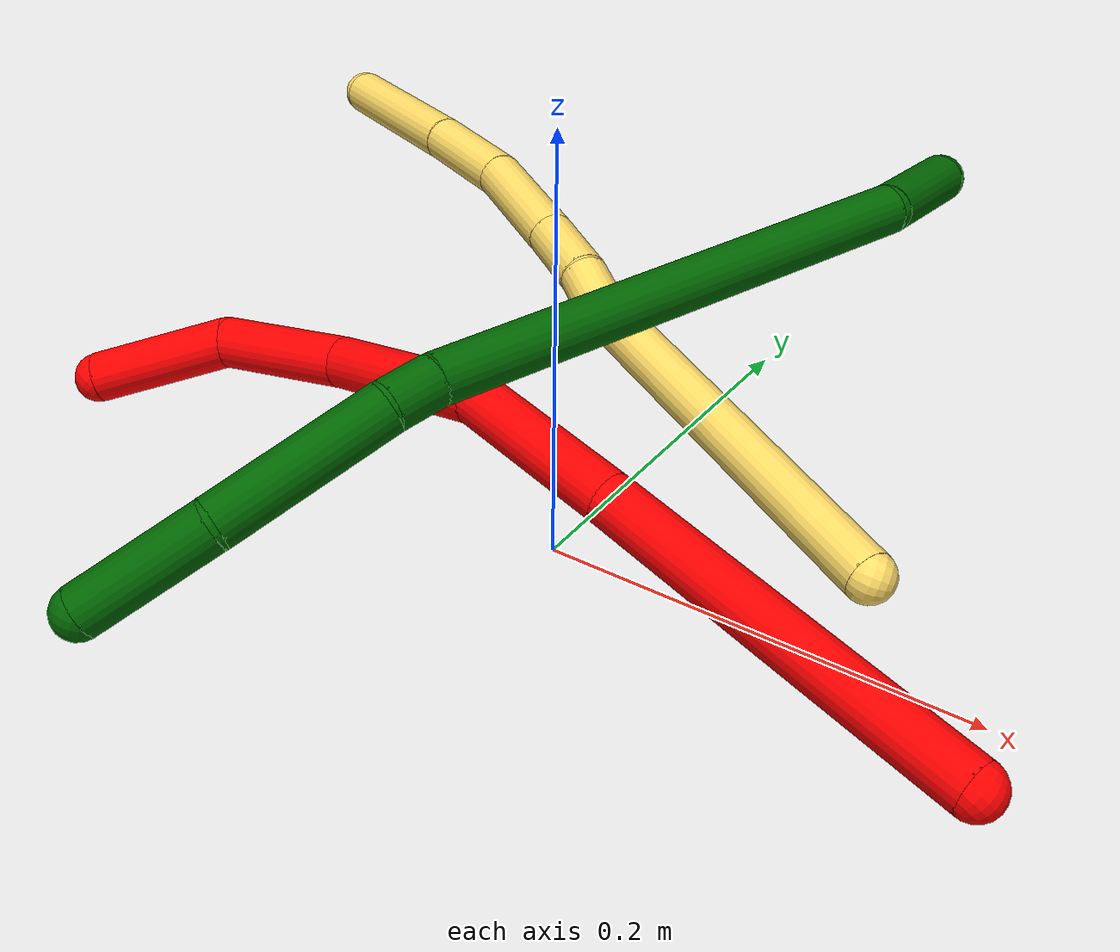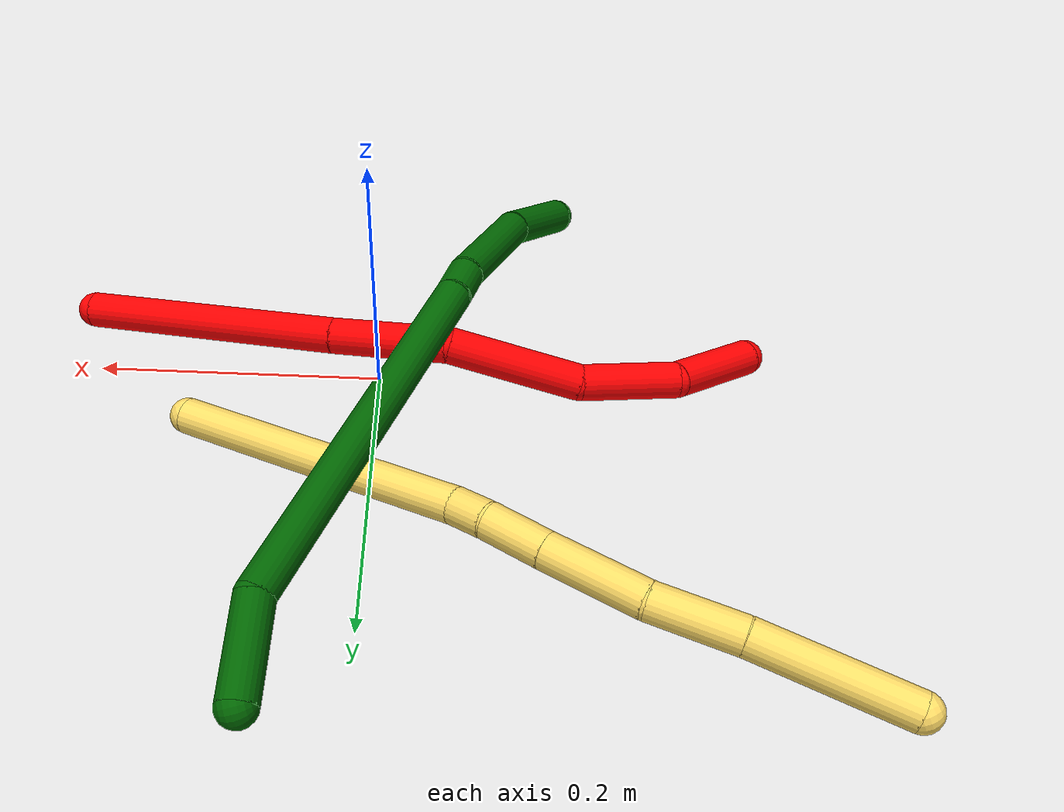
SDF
<sdf version="1.7">
 <world name="default">
  <model name="photoneo_s_sensor">
   <static>1</static>
   <pose>0 0 2 1.57079 1.57079 3.14159</pose>
   <link name="link">
    <inertial><mass>0.1</mass></inertial>
    <sensor name="sensor" type="depth">
     <update_rate>30</update_rate>
     <camera>
      <horizontal_fov>1.22</horizontal_fov>
      <image><width>1920</width><height>1200</height><format>B8G8R8</format></image>
      <clip><near>0.1</near><far>4</far></clip>
      <depth_camera><output>points</output></depth_camera>
     </camera>
     <plugin name="camera_plugin" filename="libgazebo_ros_depth_camera.so">
      <baseline>0.2</baseline>
      <alwaysOn>1</alwaysOn>
      <updateRate>0.0</updateRate>
      <cameraName>camera_ir</cameraName>
      <imageTopicName>/camera/color/image_raw</imageTopicName>
      <cameraInfoTopicName>/camera/color/camera_info</cameraInfoTopicName>
      <depthImageTopicName>/camera/depth/image_raw</depthImageTopicName>
      <depthImageCameraInfoTopicName>/camera/depth/camera_info</depthImageCameraInfoTopicName>
      <pointCloudTopicName>/camera/depth/points</pointCloudTopicName>
      <frameName>fr_optical</frameName>
      <pointCloudCutoff>0.1</pointCloudCutoff>
      <pointCloudCutoffMax>2.0</pointCloudCutoffMax>
      <distortionK1>0</distortionK1>
      <distortionK2>0</distortionK2>
      <distortionK3>0</distortionK3>
      <distortionT1>0</distortionT1>
      <distortionT2>0</distortionT2>
      <CxPrime>0</CxPrime>
      <Cx>0</Cx>
      <Cy>0</Cy>
      <focalLength>0</focalLength>
      <hackBaseline>0</hackBaseline>
     </plugin>
    </sensor>
   </link>
  </model>
  <model name="bin">
   <static>1</static>
   <link name="bottom">
    <collision name="collision-bottom">
     <pose>0 0 -0.01 0 -0 0</pose>
     <geometry><box><size>0.8 0.6 0.02</size></box></geometry>
     <surface>
      <friction><ode><mu>100</mu><mu2>100</mu2></ode></friction>
      <contact><collide_bitmask>65535</collide_bitmask></contact>
     </surface>
    </collision>
   </link>
   <link name="west_wall">
    <collision name="collision-west_wall">
     <pose>-0.41 0 0.1 0 -0 0</pose>
     <geometry><box><size>0.02 0.6 0.2</size></box></geometry>
     <surface>
      <friction><ode><mu>100</mu><mu2>100</mu2></ode></friction>
      <contact><collide_bitmask>65535</collide_bitmask></contact>
     </surface>
    </collision>
   </link>
   <link name="east_wall">
    <collision name="collision-east_wall">
     <pose>0.41 0 0.1 0 -0 0</pose>
     <geometry><box><size>0.02 0.6 0.2</size></box></geometry>
     <surface>
      <friction><ode><mu>100</mu><mu2>100</mu2></ode></friction>
      <contact><collide_bitmask>65535</collide_bitmask></contact>
     </surface>
    </collision>
   </link>
   <link name="south_wall">
    <collision name="collision-south_wall">
     <pose>0 -0.31 0.1 0 -0 0</pose>
     <geometry><box><size>0.8 0.02 0.2</size></box></geometry>
     <surface>
      <friction><ode><mu>100</mu><mu2>100</mu2></ode></friction>
      <contact><collide_bitmask>65535</collide_bitmask></contact>
     </surface>
    </collision>
   </link>
   <link name="north_wall">
    <collision name="collision-north_wall">
     <pose>0 0.31 0.1 0 -0 0</pose>
     <geometry><box><size>0.8 0.02 0.2</size></box></geometry>
     <surface>
      <friction><ode><mu>100</mu><mu2>100</mu2></ode></friction>
      <contact><collide_bitmask>65535</collide_bitmask></contact>
     </surface>
    </collision>
   </link>
  </model>
  <model name="2">
   <static>0</static>
   <link name="2">
    <collision name="collision-cylinder-e_1_1_4">
     <pose>-0.091925 0.01633 -0.011027 -2.16474 -1.35964 1.97855</pose>
     <geometry><cylinder><radius>0.0125</radius><length>0.188026</length></cylinder></geometry>
     <surface>
      <friction><ode><mu>1.16</mu><mu2>1.16</mu2><slip1>0</slip1><slip2>0</slip2></ode></friction>
      <contact><ode><kp>1e+06</kp><kd>1</kd><max_vel>0</max_vel><min_depth>0.001</min_depth></ode></contact>
     </surface>
    </collision>
    <visual name="visual-cylinder-e_1_1_4">
     <pose>-0.091925 0.01633 -0.011027 -2.16474 -1.35964 1.97855</pose>
     <geometry><cylinder><radius>0.0125</radius><length>0.188026</length></cylinder></geometry>
     <material><ambient>1 0 0 1</ambient></material>
    </visual>
    <collision name="collision-cylinder-e_2_4_5">
     <pose>-0.224299 0.038846 -0.027586 -2.30038 -1.36846 2.13841</pose>
     <geometry><cylinder><radius>0.0125</radius><length>0.082582</length></cylinder></geometry>
     <surface>
      <friction><ode><mu>1.16</mu><mu2>1.16</mu2><slip1>0</slip1><slip2>0</slip2></ode></friction>
      <contact><ode><kp>1e+06</kp><kd>1</kd><max_vel>0</max_vel><min_depth>0.001</min_depth></ode></contact>
     </surface>
    </collision>
    <visual name="visual-cylinder-e_2_4_5">
     <pose>-0.224299 0.038846 -0.027586 -2.30038 -1.36846 2.13841</pose>
     <geometry><cylinder><radius>0.0125</radius><length>0.082582</length></cylinder></geometry>
     <material><ambient>1 0 0 1</ambient></material>
    </visual>
    <collision name="collision-cylinder-e_3_5_6">
     <pose>-0.303732 0.061563 -0.051567 -2.41098 -1.0047 1.92522</pose>
     <geometry><cylinder><radius>0.0125</radius><length>0.092381</length></cylinder></geometry>
     <surface>
      <friction><ode><mu>1.16</mu><mu2>1.16</mu2><slip1>0</slip1><slip2>0</slip2></ode></friction>
      <contact><ode><kp>1e+06</kp><kd>1</kd><max_vel>0</max_vel><min_depth>0.001</min_depth></ode></contact>
     </surface>
    </collision>
    <visual name="visual-cylinder-e_3_5_6">
     <pose>-0.303732 0.061563 -0.051567 -2.41098 -1.0047 1.92522</pose>
     <geometry><cylinder><radius>0.0125</radius><length>0.092381</length></cylinder></geometry>
     <material><ambient>1 0 0 1</ambient></material>
    </visual>
    <collision name="collision-cylinder-e_4_6_7">
     <pose>-0.371457 0.080333 -0.087758 -3.01613 -1.01423 2.91644</pose>
     <geometry><cylinder><radius>0.0125</radius><length>0.067698</length></cylinder></geometry>
     <surface>
      <friction><ode><mu>1.16</mu><mu2>1.16</mu2><slip1>0</slip1><slip2>0</slip2></ode></friction>
      <contact><ode><kp>1e+06</kp><kd>1</kd><max_vel>0</max_vel><min_depth>0.001</min_depth></ode></contact>
     </surface>
    </collision>
    <visual name="visual-cylinder-e_4_6_7">
     <pose>-0.371457 0.080333 -0.087758 -3.01613 -1.01423 2.91644</pose>
     <geometry><cylinder><radius>0.0125</radius><length>0.067698</length></cylinder></geometry>
     <material><ambient>1 0 0 1</ambient></material>
    </visual>
    <collision name="collision-cylinder-e_5_7_2">
     <pose>-0.418133 0.078412 -0.13486 3.00089 -0.543971 -2.64661</pose>
     <geometry><cylinder><radius>0.0125</radius><length>0.069313</length></cylinder></geometry>
     <surface>
      <friction><ode><mu>1.16</mu><mu2>1.16</mu2><slip1>0</slip1><slip2>0</slip2></ode></friction>
      <contact><ode><kp>1e+06</kp><kd>1</kd><max_vel>0</max_vel><min_depth>0.001</min_depth></ode></contact>
     </surface>
    </collision>
    <visual name="visual-cylinder-e_5_7_2">
     <pose>-0.418133 0.078412 -0.13486 3.00089 -0.543971 -2.64661</pose>
     <geometry><cylinder><radius>0.0125</radius><length>0.069313</length></cylinder></geometry>
     <material><ambient>1 0 0 1</ambient></material>
    </visual>
    <collision name="collision-sphere-2">
     <pose>-0.43607 0.074253 -0.164222 0 -0 0</pose>
     <geometry><sphere><radius>0.0125</radius></sphere></geometry>
     <surface>
      <friction><ode><mu>1.16</mu><mu2>1.16</mu2><slip1>0</slip1><slip2>0</slip2></ode></friction>
      <contact><ode><kp>1e+06</kp><kd>1</kd><max_vel>0</max_vel><min_depth>0.001</min_depth></ode></contact>
     </surface>
    </collision>
    <visual name="visual-sphere-2">
     <pose>-0.43607 0.074253 -0.164222 0 -0 0</pose>
     <geometry><sphere><radius>0.0125</radius></sphere></geometry>
     <material><ambient>1 0 0 1</ambient></material>
    </visual>
    <collision name="collision-sphere-7">
     <pose>-0.400197 0.08257 -0.105499 0 -0 0</pose>
     <geometry><sphere><radius>0.0125</radius></sphere></geometry>
     <surface>
      <friction><ode><mu>1.16</mu><mu2>1.16</mu2><slip1>0</slip1><slip2>0</slip2></ode></friction>
      <contact><ode><kp>1e+06</kp><kd>1</kd><max_vel>0</max_vel><min_depth>0.001</min_depth></ode></contact>
     </surface>
    </collision>
    <visual name="visual-sphere-7">
     <pose>-0.400197 0.08257 -0.105499 0 -0 0</pose>
     <geometry><sphere><radius>0.0125</radius></sphere></geometry>
     <material><ambient>1 0 0 1</ambient></material>
    </visual>
    <collision name="collision-sphere-6">
     <pose>-0.342717 0.078095 -0.070017 0 -0 0</pose>
     <geometry><sphere><radius>0.0125</radius></sphere></geometry>
     <surface>
      <friction><ode><mu>1.16</mu><mu2>1.16</mu2><slip1>0</slip1><slip2>0</slip2></ode></friction>
      <contact><ode><kp>1e+06</kp><kd>1</kd><max_vel>0</max_vel><min_depth>0.001</min_depth></ode></contact>
     </surface>
    </collision>
    <visual name="visual-sphere-6">
     <pose>-0.342717 0.078095 -0.070017 0 -0 0</pose>
     <geometry><sphere><radius>0.0125</radius></sphere></geometry>
     <material><ambient>1 0 0 1</ambient></material>
    </visual>
    <collision name="collision-sphere-5">
     <pose>-0.264747 0.045031 -0.033116 0 -0 0</pose>
     <geometry><sphere><radius>0.0125</radius></sphere></geometry>
     <surface>
      <friction><ode><mu>1.16</mu><mu2>1.16</mu2><slip1>0</slip1><slip2>0</slip2></ode></friction>
      <contact><ode><kp>1e+06</kp><kd>1</kd><max_vel>0</max_vel><min_depth>0.001</min_depth></ode></contact>
     </surface>
    </collision>
    <visual name="visual-sphere-5">
     <pose>-0.264747 0.045031 -0.033116 0 -0 0</pose>
     <geometry><sphere><radius>0.0125</radius></sphere></geometry>
     <material><ambient>1 0 0 1</ambient></material>
    </visual>
    <collision name="collision-sphere-1">
     <geometry><sphere><radius>0.0125</radius></sphere></geometry>
     <surface>
      <friction><ode><mu>1.16</mu><mu2>1.16</mu2><slip1>0</slip1><slip2>0</slip2></ode></friction>
      <contact><ode><kp>1e+06</kp><kd>1</kd><max_vel>0</max_vel><min_depth>0.001</min_depth></ode></contact>
     </surface>
    </collision>
    <visual name="visual-sphere-1">
     <geometry><sphere><radius>0.0125</radius></sphere></geometry>
     <material><ambient>1 0 0 1</ambient></material>
    </visual>
    <collision name="collision-sphere-4">
     <pose>-0.18385 0.03266 -0.022055 0 -0 0</pose>
     <geometry><sphere><radius>0.0125</radius></sphere></geometry>
     <surface>
      <friction><ode><mu>1.16</mu><mu2>1.16</mu2><slip1>0</slip1><slip2>0</slip2></ode></friction>
      <contact><ode><kp>1e+06</kp><kd>1</kd><max_vel>0</max_vel><min_depth>0.001</min_depth></ode></contact>
     </surface>
    </collision>
    <visual name="visual-sphere-4">
     <pose>-0.18385 0.03266 -0.022055 0 -0 0</pose>
     <geometry><sphere><radius>0.0125</radius></sphere></geometry>
     <material><ambient>1 0 0 1</ambient></material>
    </visual>
    <inertial>
     <pose>-0.235991 0.045678 -0.048808 0 -0 0</pose>
     <mass>0.5</mass>
     <inertia><ixx>6e-06</ixx><ixy>0</ixy><ixz>0</ixz><iyy>0.000849</iyy><iyz>0</iyz><izz>0.000556</izz></inertia>
    </inertial>
   </link>
   <pose>0.211228 -0.04502 0.0125 -0.798465 0.365153 -0.185338</pose>
  </model>
  <model name="5">
   <static>0</static>
   <link name="5">
    <collision name="collision-cylinder-e_1_1_4">
     <pose>-0.069444 0.016179 0.07509 -0.212215 -0.735051 0.081969</pose>
     <geometry><cylinder><radius>0.0125</radius><length>0.207102</length></cylinder></geometry>
     <surface>
      <friction><ode><mu>1.16</mu><mu2>1.16</mu2><slip1>0</slip1><slip2>0</slip2></ode></friction>
      <contact><ode><kp>1e+06</kp><kd>1</kd><max_vel>0</max_vel><min_depth>0.001</min_depth></ode></contact>
     </surface>
    </collision>
    <visual name="visual-cylinder-e_1_1_4">
     <pose>-0.069444 0.016179 0.07509 -0.212215 -0.735051 0.081969</pose>
     <geometry><cylinder><radius>0.0125</radius><length>0.207102</length></cylinder></geometry>
     <material><ambient>1 0.858824 0.4 1</ambient></material>
    </visual>
    <collision name="collision-cylinder-e_2_4_5">
     <pose>-0.148255 0.036799 0.158159 -0.507913 -0.798175 0.218055</pose>
     <geometry><cylinder><radius>0.0125</radius><length>0.026163</length></cylinder></geometry>
     <surface>
      <friction><ode><mu>1.16</mu><mu2>1.16</mu2><slip1>0</slip1><slip2>0</slip2></ode></friction>
      <contact><ode><kp>1e+06</kp><kd>1</kd><max_vel>0</max_vel><min_depth>0.001</min_depth></ode></contact>
     </surface>
    </collision>
    <visual name="visual-cylinder-e_2_4_5">
     <pose>-0.148255 0.036799 0.158159 -0.507913 -0.798175 0.218055</pose>
     <geometry><cylinder><radius>0.0125</radius><length>0.026163</length></cylinder></geometry>
     <material><ambient>1 0.858824 0.4 1</ambient></material>
    </visual>
    <collision name="collision-cylinder-e_3_5_6">
     <pose>-0.173543 0.044689 0.178896 -0.26402 -0.877964 0.124531</pose>
     <geometry><cylinder><radius>0.0125</radius><length>0.041382</length></cylinder></geometry>
     <surface>
      <friction><ode><mu>1.16</mu><mu2>1.16</mu2><slip1>0</slip1><slip2>0</slip2></ode></friction>
      <contact><ode><kp>1e+06</kp><kd>1</kd><max_vel>0</max_vel><min_depth>0.001</min_depth></ode></contact>
     </surface>
    </collision>
    <visual name="visual-cylinder-e_3_5_6">
     <pose>-0.173543 0.044689 0.178896 -0.26402 -0.877964 0.124531</pose>
     <geometry><cylinder><radius>0.0125</radius><length>0.041382</length></cylinder></geometry>
     <material><ambient>1 0.858824 0.4 1</ambient></material>
    </visual>
    <collision name="collision-cylinder-e_4_6_7">
     <pose>-0.21509 0.053383 0.213223 -0.238571 -0.856959 0.109386</pose>
     <geometry><cylinder><radius>0.0125</radius><length>0.067807</length></cylinder></geometry>
     <surface>
      <friction><ode><mu>1.16</mu><mu2>1.16</mu2><slip1>0</slip1><slip2>0</slip2></ode></friction>
      <contact><ode><kp>1e+06</kp><kd>1</kd><max_vel>0</max_vel><min_depth>0.001</min_depth></ode></contact>
     </surface>
    </collision>
    <visual name="visual-cylinder-e_4_6_7">
     <pose>-0.21509 0.053383 0.213223 -0.238571 -0.856959 0.109386</pose>
     <geometry><cylinder><radius>0.0125</radius><length>0.067807</length></cylinder></geometry>
     <material><ambient>1 0.858824 0.4 1</ambient></material>
    </visual>
    <collision name="collision-cylinder-e_5_7_8">
     <pose>-0.260372 0.059315 0.256053 -0.03227 -0.745935 0.012627</pose>
     <geometry><cylinder><radius>0.0125</radius><length>0.057927</length></cylinder></geometry>
     <surface>
      <friction><ode><mu>1.16</mu><mu2>1.16</mu2><slip1>0</slip1><slip2>0</slip2></ode></friction>
      <contact><ode><kp>1e+06</kp><kd>1</kd><max_vel>0</max_vel><min_depth>0.001</min_depth></ode></contact>
     </surface>
    </collision>
    <visual name="visual-cylinder-e_5_7_8">
     <pose>-0.260372 0.059315 0.256053 -0.03227 -0.745935 0.012627</pose>
     <geometry><cylinder><radius>0.0125</radius><length>0.057927</length></cylinder></geometry>
     <material><ambient>1 0.858824 0.4 1</ambient></material>
    </visual>
    <collision name="collision-cylinder-e_6_8_2">
     <pose>-0.315762 0.058598 0.311986 0.040454 -0.800063 -0.017107</pose>
     <geometry><cylinder><radius>0.0125</radius><length>0.099619</length></cylinder></geometry>
     <surface>
      <friction><ode><mu>1.16</mu><mu2>1.16</mu2><slip1>0</slip1><slip2>0</slip2></ode></friction>
      <contact><ode><kp>1e+06</kp><kd>1</kd><max_vel>0</max_vel><min_depth>0.001</min_depth></ode></contact>
     </surface>
    </collision>
    <visual name="visual-cylinder-e_6_8_2">
     <pose>-0.315762 0.058598 0.311986 0.040454 -0.800063 -0.017107</pose>
     <geometry><cylinder><radius>0.0125</radius><length>0.099619</length></cylinder></geometry>
     <material><ambient>1 0.858824 0.4 1</ambient></material>
    </visual>
    <collision name="collision-sphere-2">
     <pose>-0.351495 0.057195 0.346658 0 -0 0</pose>
     <geometry><sphere><radius>0.0125</radius></sphere></geometry>
     <surface>
      <friction><ode><mu>1.16</mu><mu2>1.16</mu2><slip1>0</slip1><slip2>0</slip2></ode></friction>
      <contact><ode><kp>1e+06</kp><kd>1</kd><max_vel>0</max_vel><min_depth>0.001</min_depth></ode></contact>
     </surface>
    </collision>
    <visual name="visual-sphere-2">
     <pose>-0.351495 0.057195 0.346658 0 -0 0</pose>
     <geometry><sphere><radius>0.0125</radius></sphere></geometry>
     <material><ambient>1 0.858824 0.4 1</ambient></material>
    </visual>
    <collision name="collision-sphere-4">
     <pose>-0.138888 0.032358 0.150181 0 -0 0</pose>
     <geometry><sphere><radius>0.0125</radius></sphere></geometry>
     <surface>
      <friction><ode><mu>1.16</mu><mu2>1.16</mu2><slip1>0</slip1><slip2>0</slip2></ode></friction>
      <contact><ode><kp>1e+06</kp><kd>1</kd><max_vel>0</max_vel><min_depth>0.001</min_depth></ode></contact>
     </surface>
    </collision>
    <visual name="visual-sphere-4">
     <pose>-0.138888 0.032358 0.150181 0 -0 0</pose>
     <geometry><sphere><radius>0.0125</radius></sphere></geometry>
     <material><ambient>1 0.858824 0.4 1</ambient></material>
    </visual>
    <collision name="collision-sphere-1">
     <geometry><sphere><radius>0.0125</radius></sphere></geometry>
     <surface>
      <friction><ode><mu>1.16</mu><mu2>1.16</mu2><slip1>0</slip1><slip2>0</slip2></ode></friction>
      <contact><ode><kp>1e+06</kp><kd>1</kd><max_vel>0</max_vel><min_depth>0.001</min_depth></ode></contact>
     </surface>
    </collision>
    <visual name="visual-sphere-1">
     <geometry><sphere><radius>0.0125</radius></sphere></geometry>
     <material><ambient>1 0.858824 0.4 1</ambient></material>
    </visual>
    <collision name="collision-sphere-8">
     <pose>-0.280029 0.060002 0.277314 0 -0 0</pose>
     <geometry><sphere><radius>0.0125</radius></sphere></geometry>
     <surface>
      <friction><ode><mu>1.16</mu><mu2>1.16</mu2><slip1>0</slip1><slip2>0</slip2></ode></friction>
      <contact><ode><kp>1e+06</kp><kd>1</kd><max_vel>0</max_vel><min_depth>0.001</min_depth></ode></contact>
     </surface>
    </collision>
    <visual name="visual-sphere-8">
     <pose>-0.280029 0.060002 0.277314 0 -0 0</pose>
     <geometry><sphere><radius>0.0125</radius></sphere></geometry>
     <material><ambient>1 0.858824 0.4 1</ambient></material>
    </visual>
    <collision name="collision-sphere-5">
     <pose>-0.157623 0.04124 0.166138 0 -0 0</pose>
     <geometry><sphere><radius>0.0125</radius></sphere></geometry>
     <surface>
      <friction><ode><mu>1.16</mu><mu2>1.16</mu2><slip1>0</slip1><slip2>0</slip2></ode></friction>
      <contact><ode><kp>1e+06</kp><kd>1</kd><max_vel>0</max_vel><min_depth>0.001</min_depth></ode></contact>
     </surface>
    </collision>
    <visual name="visual-sphere-5">
     <pose>-0.157623 0.04124 0.166138 0 -0 0</pose>
     <geometry><sphere><radius>0.0125</radius></sphere></geometry>
     <material><ambient>1 0.858824 0.4 1</ambient></material>
    </visual>
    <collision name="collision-sphere-6">
     <pose>-0.189464 0.048137 0.191654 0 -0 0</pose>
     <geometry><sphere><radius>0.0125</radius></sphere></geometry>
     <surface>
      <friction><ode><mu>1.16</mu><mu2>1.16</mu2><slip1>0</slip1><slip2>0</slip2></ode></friction>
      <contact><ode><kp>1e+06</kp><kd>1</kd><max_vel>0</max_vel><min_depth>0.001</min_depth></ode></contact>
     </surface>
    </collision>
    <visual name="visual-sphere-6">
     <pose>-0.189464 0.048137 0.191654 0 -0 0</pose>
     <geometry><sphere><radius>0.0125</radius></sphere></geometry>
     <material><ambient>1 0.858824 0.4 1</ambient></material>
    </visual>
    <collision name="collision-sphere-7">
     <pose>-0.240716 0.058629 0.234792 0 -0 0</pose>
     <geometry><sphere><radius>0.0125</radius></sphere></geometry>
     <surface>
      <friction><ode><mu>1.16</mu><mu2>1.16</mu2><slip1>0</slip1><slip2>0</slip2></ode></friction>
      <contact><ode><kp>1e+06</kp><kd>1</kd><max_vel>0</max_vel><min_depth>0.001</min_depth></ode></contact>
     </surface>
    </collision>
    <visual name="visual-sphere-7">
     <pose>-0.240716 0.058629 0.234792 0 -0 0</pose>
     <geometry><sphere><radius>0.0125</radius></sphere></geometry>
     <material><ambient>1 0.858824 0.4 1</ambient></material>
    </visual>
    <inertial>
     <pose>-0.173131 0.038112 0.174925 0 -0 0</pose>
     <mass>0.5</mass>
     <inertia>
      <ixx>0.000672</ixx>
      <ixy>0</ixy>
      <ixz>0</ixz>
      <iyy>0.000932</iyy>
      <iyz>0</iyz>
      <izz>0.000511</izz>
     </inertia>
    </inertial>
   </link>
   <pose>0.1278 0.047352 0.011601 1.28314 -0.285599 -1.14119</pose>
  </model>
  <model name="6">
   <static>0</static>
   <link name="6">
    <collision name="collision-cylinder-e_1_1_4">
     <pose>-0.001782 -0.030426 0.007681 1.32352 -0.056727 -0.044191</pose>
     <geometry><cylinder><radius>0.0125</radius><length>0.062862</length></cylinder></geometry>
     <surface>
      <friction><ode><mu>1.16</mu><mu2>1.16</mu2><slip1>0</slip1><slip2>0</slip2></ode></friction>
      <contact><ode><kp>1e+06</kp><kd>1</kd><max_vel>0</max_vel><min_depth>0.001</min_depth></ode></contact>
     </surface>
    </collision>
    <visual name="visual-cylinder-e_1_1_4">
     <pose>-0.001782 -0.030426 0.007681 1.32352 -0.056727 -0.044191</pose>
     <geometry><cylinder><radius>0.0125</radius><length>0.062862</length></cylinder></geometry>
     <material><ambient>0 0.392157 0.003922 1</ambient></material>
    </visual>
    <collision name="collision-cylinder-e_2_4_5">
     <pose>-0.037879 -0.165295 0.085263 0.980989 -0.266549 -0.142948</pose>
     <geometry><cylinder><radius>0.0125</radius><length>0.260553</length></cylinder></geometry>
     <surface>
      <friction><ode><mu>1.16</mu><mu2>1.16</mu2><slip1>0</slip1><slip2>0</slip2></ode></friction>
      <contact><ode><kp>1e+06</kp><kd>1</kd><max_vel>0</max_vel><min_depth>0.001</min_depth></ode></contact>
     </surface>
    </collision>
    <visual name="visual-cylinder-e_2_4_5">
     <pose>-0.037879 -0.165295 0.085263 0.980989 -0.266549 -0.142948</pose>
     <geometry><cylinder><radius>0.0125</radius><length>0.260553</length></cylinder></geometry>
     <material><ambient>0 0.392157 0.003922 1</ambient></material>
    </visual>
    <collision name="collision-cylinder-e_3_5_6">
     <pose>-0.076671 -0.280025 0.160549 1.08855 -0.367926 -0.224291</pose>
     <geometry><cylinder><radius>0.0125</radius><length>0.02489</length></cylinder></geometry>
     <surface>
      <friction><ode><mu>1.16</mu><mu2>1.16</mu2><slip1>0</slip1><slip2>0</slip2></ode></friction>
      <contact><ode><kp>1e+06</kp><kd>1</kd><max_vel>0</max_vel><min_depth>0.001</min_depth></ode></contact>
     </surface>
    </collision>
    <visual name="visual-cylinder-e_3_5_6">
     <pose>-0.076671 -0.280025 0.160549 1.08855 -0.367926 -0.224291</pose>
     <geometry><cylinder><radius>0.0125</radius><length>0.02489</length></cylinder></geometry>
     <material><ambient>0 0.392157 0.003922 1</ambient></material>
    </visual>
    <collision name="collision-cylinder-e_4_6_7">
     <pose>-0.104032 -0.321314 0.185669 1.00392 -0.556949 -0.311299</pose>
     <geometry><cylinder><radius>0.0125</radius><length>0.086585</length></cylinder></geometry>
     <surface>
      <friction><ode><mu>1.16</mu><mu2>1.16</mu2><slip1>0</slip1><slip2>0</slip2></ode></friction>
      <contact><ode><kp>1e+06</kp><kd>1</kd><max_vel>0</max_vel><min_depth>0.001</min_depth></ode></contact>
     </surface>
    </collision>
    <visual name="visual-cylinder-e_4_6_7">
     <pose>-0.104032 -0.321314 0.185669 1.00392 -0.556949 -0.311299</pose>
     <geometry><cylinder><radius>0.0125</radius><length>0.086585</length></cylinder></geometry>
     <material><ambient>0 0.392157 0.003922 1</ambient></material>
    </visual>
    <collision name="collision-cylinder-e_5_7_2">
     <pose>-0.148625 -0.369007 0.223009 0.758744 -0.729971 -0.302354</pose>
     <geometry><cylinder><radius>0.0125</radius><length>0.06511</length></cylinder></geometry>
     <surface>
      <friction><ode><mu>1.16</mu><mu2>1.16</mu2><slip1>0</slip1><slip2>0</slip2></ode></friction>
      <contact><ode><kp>1e+06</kp><kd>1</kd><max_vel>0</max_vel><min_depth>0.001</min_depth></ode></contact>
     </surface>
    </collision>
    <visual name="visual-cylinder-e_5_7_2">
     <pose>-0.148625 -0.369007 0.223009 0.758744 -0.729971 -0.302354</pose>
     <geometry><cylinder><radius>0.0125</radius><length>0.06511</length></cylinder></geometry>
     <material><ambient>0 0.392157 0.003922 1</ambient></material>
    </visual>
    <collision name="collision-sphere-2">
     <pose>-0.170334 -0.385698 0.240614 0 -0 0</pose>
     <geometry><sphere><radius>0.0125</radius></sphere></geometry>
     <surface>
      <friction><ode><mu>1.16</mu><mu2>1.16</mu2><slip1>0</slip1><slip2>0</slip2></ode></friction>
      <contact><ode><kp>1e+06</kp><kd>1</kd><max_vel>0</max_vel><min_depth>0.001</min_depth></ode></contact>
     </surface>
    </collision>
    <visual name="visual-sphere-2">
     <pose>-0.170334 -0.385698 0.240614 0 -0 0</pose>
     <geometry><sphere><radius>0.0125</radius></sphere></geometry>
     <material><ambient>0 0.392157 0.003922 1</ambient></material>
    </visual>
    <collision name="collision-sphere-7">
     <pose>-0.126916 -0.352316 0.205404 0 -0 0</pose>
     <geometry><sphere><radius>0.0125</radius></sphere></geometry>
     <surface>
      <friction><ode><mu>1.16</mu><mu2>1.16</mu2><slip1>0</slip1><slip2>0</slip2></ode></friction>
      <contact><ode><kp>1e+06</kp><kd>1</kd><max_vel>0</max_vel><min_depth>0.001</min_depth></ode></contact>
     </surface>
    </collision>
    <visual name="visual-sphere-7">
     <pose>-0.126916 -0.352316 0.205404 0 -0 0</pose>
     <geometry><sphere><radius>0.0125</radius></sphere></geometry>
     <material><ambient>0 0.392157 0.003922 1</ambient></material>
    </visual>
    <collision name="collision-sphere-6">
     <pose>-0.081147 -0.290313 0.165934 0 -0 0</pose>
     <geometry><sphere><radius>0.0125</radius></sphere></geometry>
     <surface>
      <friction><ode><mu>1.16</mu><mu2>1.16</mu2><slip1>0</slip1><slip2>0</slip2></ode></friction>
      <contact><ode><kp>1e+06</kp><kd>1</kd><max_vel>0</max_vel><min_depth>0.001</min_depth></ode></contact>
     </surface>
    </collision>
    <visual name="visual-sphere-6">
     <pose>-0.081147 -0.290313 0.165934 0 -0 0</pose>
     <geometry><sphere><radius>0.0125</radius></sphere></geometry>
     <material><ambient>0 0.392157 0.003922 1</ambient></material>
    </visual>
    <collision name="collision-sphere-5">
     <pose>-0.072195 -0.269737 0.155164 0 -0 0</pose>
     <geometry><sphere><radius>0.0125</radius></sphere></geometry>
     <surface>
      <friction><ode><mu>1.16</mu><mu2>1.16</mu2><slip1>0</slip1><slip2>0</slip2></ode></friction>
      <contact><ode><kp>1e+06</kp><kd>1</kd><max_vel>0</max_vel><min_depth>0.001</min_depth></ode></contact>
     </surface>
    </collision>
    <visual name="visual-sphere-5">
     <pose>-0.072195 -0.269737 0.155164 0 -0 0</pose>
     <geometry><sphere><radius>0.0125</radius></sphere></geometry>
     <material><ambient>0 0.392157 0.003922 1</ambient></material>
    </visual>
    <collision name="collision-sphere-1">
     <geometry><sphere><radius>0.0125</radius></sphere></geometry>
     <surface>
      <friction><ode><mu>1.16</mu><mu2>1.16</mu2><slip1>0</slip1><slip2>0</slip2></ode></friction>
      <contact><ode><kp>1e+06</kp><kd>1</kd><max_vel>0</max_vel><min_depth>0.001</min_depth></ode></contact>
     </surface>
    </collision>
    <visual name="visual-sphere-1">
     <geometry><sphere><radius>0.0125</radius></sphere></geometry>
     <material><ambient>0 0.392157 0.003922 1</ambient></material>
    </visual>
    <collision name="collision-sphere-4">
     <pose>-0.003564 -0.060852 0.015362 0 -0 0</pose>
     <geometry><sphere><radius>0.0125</radius></sphere></geometry>
     <surface>
      <friction><ode><mu>1.16</mu><mu2>1.16</mu2><slip1>0</slip1><slip2>0</slip2></ode></friction>
      <contact><ode><kp>1e+06</kp><kd>1</kd><max_vel>0</max_vel><min_depth>0.001</min_depth></ode></contact>
     </surface>
    </collision>
    <visual name="visual-sphere-4">
     <pose>-0.003564 -0.060852 0.015362 0 -0 0</pose>
     <geometry><sphere><radius>0.0125</radius></sphere></geometry>
     <material><ambient>0 0.392157 0.003922 1</ambient></material>
    </visual>
    <inertial>
     <pose>-0.061149 -0.207595 0.114581 0 -0 0</pose>
     <mass>0.5</mass>
     <inertia>
      <ixx>0.001268</ixx>
      <ixy>0</ixy>
      <ixz>0</ixz>
      <iyy>0.000672</iyy>
      <iyz>0</iyz>
      <izz>0.001728</izz>
     </inertia>
    </inertial>
   </link>
   <pose>0.050042 0.287669 0.085047 -0.444102 -1.3263 0.658683</pose>
  </model>
 </world>
</sdf>
